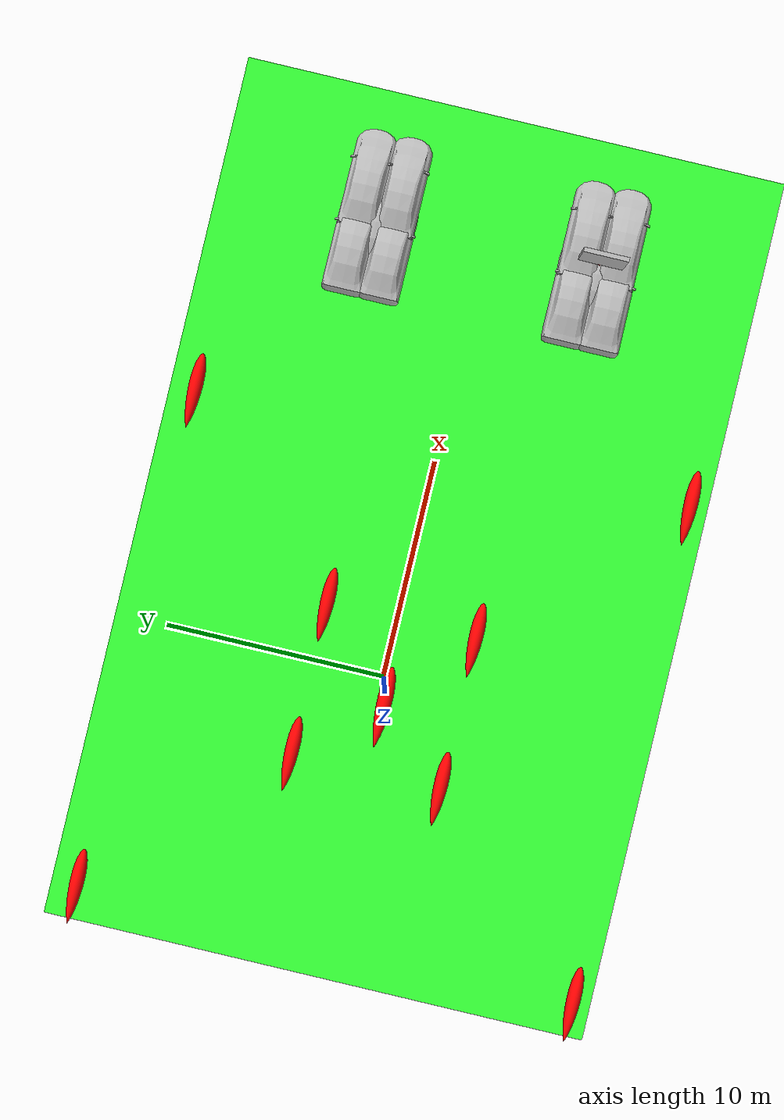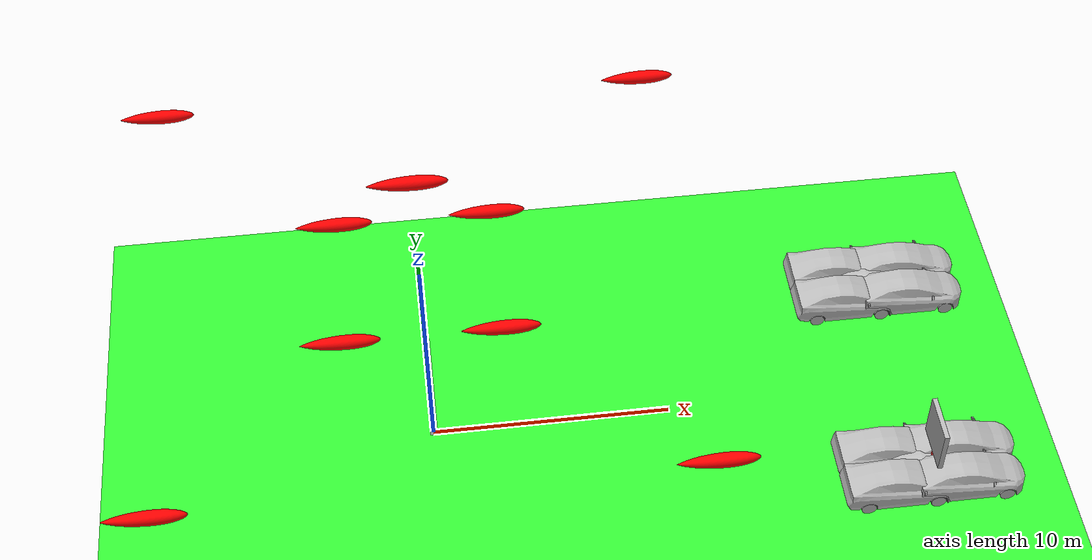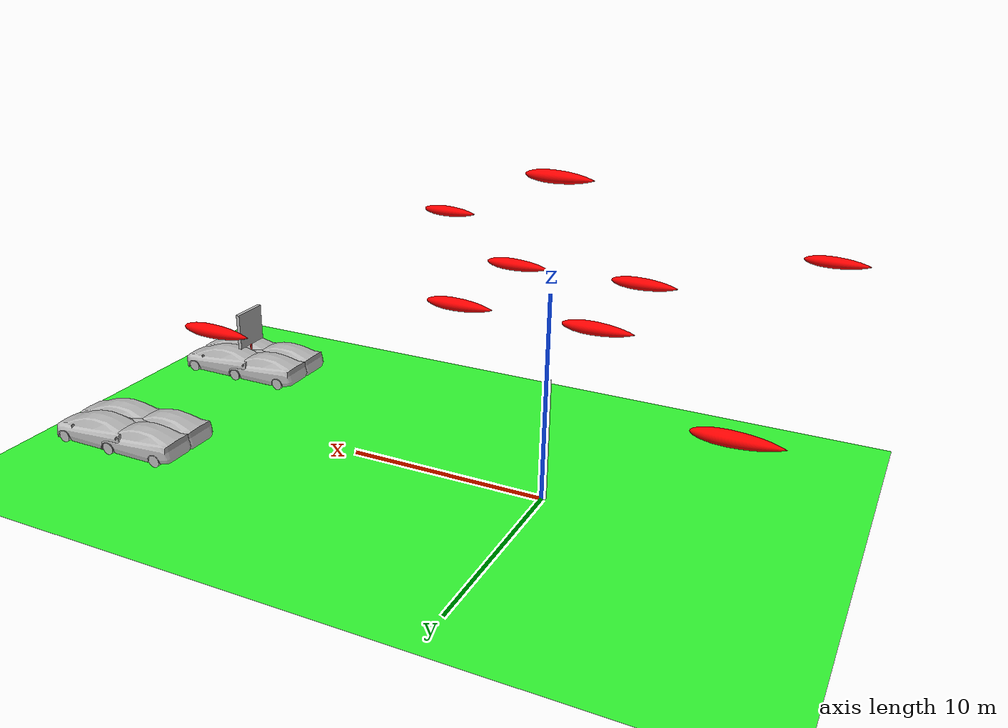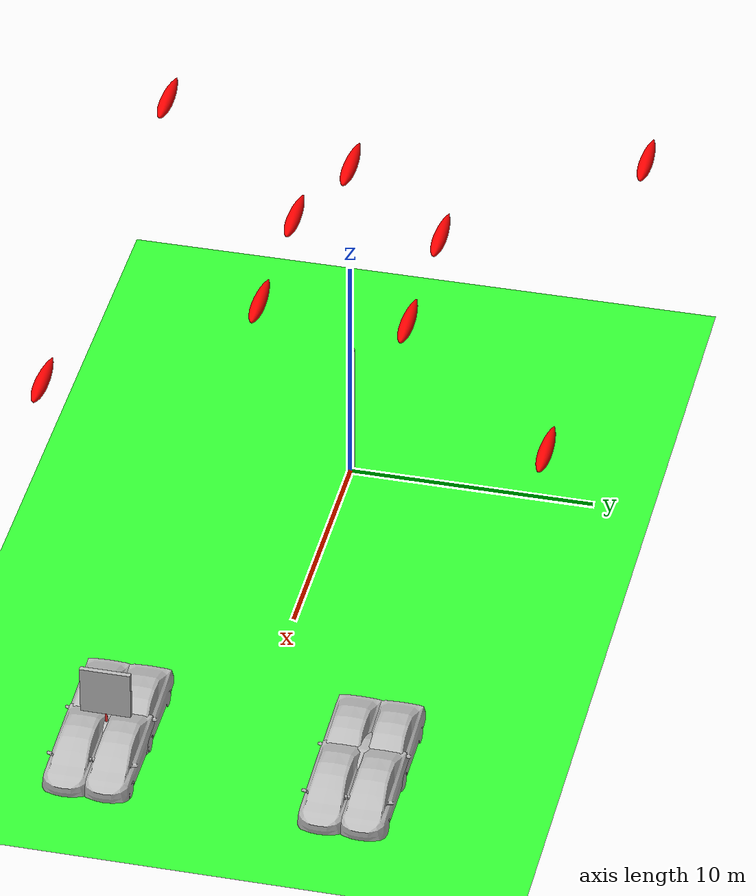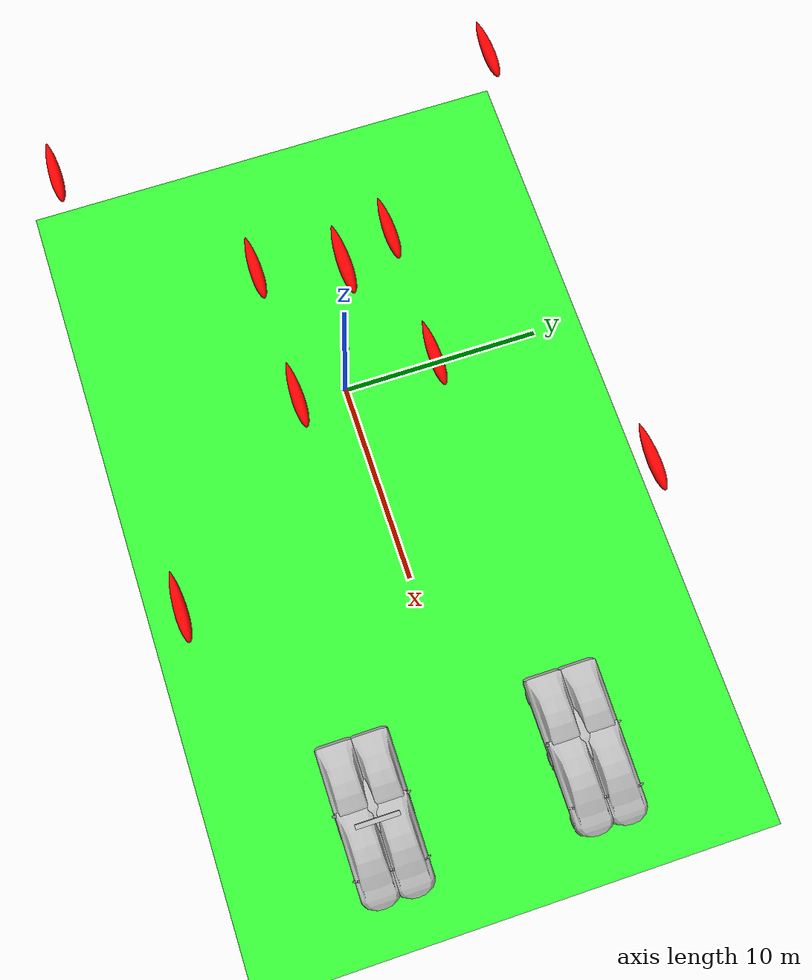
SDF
<?xml version="1.0" encoding="UTF-8"?>
<sdf version="1.9">
  <world name="vision_radar_track">
    <physics type="ode">
      <max_step_size>0.001</max_step_size>
      <real_time_factor>1.0</real_time_factor>
      <real_time_update_rate>250</real_time_update_rate>
    </physics>
    <plugin name="gz::sim::systems::Physics" filename="gz-sim-physics-system"/>
    <plugin name="gz::sim::systems::UserCommands" filename="gz-sim-user-commands-system"/>
    <plugin name="gz::sim::systems::SceneBroadcaster" filename="gz-sim-scene-broadcaster-system"/>
    <plugin name="gz::sim::systems::Contact" filename="gz-sim-contact-system"/>
    <plugin name="gz::sim::systems::Imu" filename="gz-sim-imu-system"/>
    <plugin name="gz::sim::systems::AirPressure" filename="gz-sim-air-pressure-system"/>
    <plugin name="gz::sim::systems::AirSpeed" filename="gz-sim-air-speed-system"/>
    <plugin name="gz::sim::systems::ApplyLinkWrench" filename="gz-sim-apply-link-wrench-system"/>
    <plugin name="gz::sim::systems::NavSat" filename="gz-sim-navsat-system"/>
    <plugin name="gz::sim::systems::Sensors" filename="gz-sim-sensors-system">
      <render_engine>ogre2</render_engine>
    </plugin>
    <gui fullscreen="false">
      <!-- 3D scene -->
      <plugin filename="MinimalScene" name="3D View">
        <gz-gui>
          <title>3D View</title>
          <property type="bool" key="showTitleBar">false</property>
          <property type="string" key="state">docked</property>
        </gz-gui>
        <engine>ogre2</engine>
        <scene>scene</scene>
        <ambient_light>0.4 0.4 0.4</ambient_light>
        <background_color>0.8 0.8 0.8</background_color>
        <camera_pose>-6 0 6 0 0.5 0</camera_pose>
        <camera_clip>
          <near>0.25</near>
          <far>25000</far>
        </camera_clip>
      </plugin>
      <!-- Plugins that add functionality to the scene -->
      <plugin filename="EntityContextMenuPlugin" name="Entity context menu">
        <gz-gui>
          <property key="state" type="string">floating</property>
          <property key="width" type="double">5</property>
          <property key="height" type="double">5</property>
          <property key="showTitleBar" type="bool">false</property>
        </gz-gui>
      </plugin>
      <plugin filename="GzSceneManager" name="Scene Manager">
        <gz-gui>
          <property key="resizable" type="bool">false</property>
          <property key="width" type="double">5</property>
          <property key="height" type="double">5</property>
          <property key="state" type="string">floating</property>
          <property key="showTitleBar" type="bool">false</property>
        </gz-gui>
      </plugin>
      <plugin filename="InteractiveViewControl" name="Interactive view control">
        <gz-gui>
          <property key="resizable" type="bool">false</property>
          <property key="width" type="double">5</property>
          <property key="height" type="double">5</property>
          <property key="state" type="string">floating</property>
          <property key="showTitleBar" type="bool">false</property>
        </gz-gui>
      </plugin>
      <plugin filename="CameraTracking" name="Camera Tracking">
        <gz-gui>
          <property key="resizable" type="bool">false</property>
          <property key="width" type="double">5</property>
          <property key="height" type="double">5</property>
          <property key="state" type="string">floating</property>
          <property key="showTitleBar" type="bool">false</property>
        </gz-gui>
      </plugin>
      <plugin filename="MarkerManager" name="Marker manager">
        <gz-gui>
          <property key="resizable" type="bool">false</property>
          <property key="width" type="double">5</property>
          <property key="height" type="double">5</property>
          <property key="state" type="string">floating</property>
          <property key="showTitleBar" type="bool">false</property>
        </gz-gui>
      </plugin>
      <plugin filename="SelectEntities" name="Select Entities">
        <gz-gui>
          <anchors target="Select entities">
            <line own="right" target="right"/>
            <line own="top" target="top"/>
          </anchors>
          <property key="resizable" type="bool">false</property>
          <property key="width" type="double">5</property>
          <property key="height" type="double">5</property>
          <property key="state" type="string">floating</property>
          <property key="showTitleBar" type="bool">false</property>
        </gz-gui>
      </plugin>
      <plugin filename="VisualizationCapabilities" name="Visualization Capabilities">
        <gz-gui>
          <property key="resizable" type="bool">false</property>
          <property key="width" type="double">5</property>
          <property key="height" type="double">5</property>
          <property key="state" type="string">floating</property>
          <property key="showTitleBar" type="bool">false</property>
        </gz-gui>
      </plugin>
      <plugin filename="Spawn" name="Spawn Entities">
        <gz-gui>
          <anchors target="Select entities">
            <line own="right" target="right"/>
            <line own="top" target="top"/>
          </anchors>
          <property key="resizable" type="bool">false</property>
          <property key="width" type="double">5</property>
          <property key="height" type="double">5</property>
          <property key="state" type="string">floating</property>
          <property key="showTitleBar" type="bool">false</property>
        </gz-gui>
      </plugin>
      <plugin name="World control" filename="WorldControl">
        <gz-gui>
          <title>World control</title>
          <property type="bool" key="showTitleBar">0</property>
          <property type="bool" key="resizable">0</property>
          <property type="double" key="height">72</property>
          <property type="double" key="width">121</property>
          <property type="double" key="z">1</property>
          <property type="string" key="state">floating</property>
          <anchors target="3D View">
            <line own="left" target="left"/>
            <line own="bottom" target="bottom"/>
          </anchors>
        </gz-gui>
        <play_pause>1</play_pause>
        <step>1</step>
        <start_paused>1</start_paused>
      </plugin>
      <plugin name="World stats" filename="WorldStats">
        <gz-gui>
          <title>World stats</title>
          <property type="bool" key="showTitleBar">0</property>
          <property type="bool" key="resizable">0</property>
          <property type="double" key="height">110</property>
          <property type="double" key="width">290</property>
          <property type="double" key="z">1</property>
          <property type="string" key="state">floating</property>
          <anchors target="3D View">
            <line own="right" target="right"/>
            <line own="bottom" target="bottom"/>
          </anchors>
        </gz-gui>
        <sim_time>1</sim_time>
        <real_time>1</real_time>
        <real_time_factor>1</real_time_factor>
        <iterations>1</iterations>
      </plugin>
      <plugin name="Entity tree" filename="EntityTree"/>
    </gui>
    <gravity>0 0 -9.8</gravity>
    <magnetic_field>6e-06 2.3e-05 -4.2e-05</magnetic_field>
    <atmosphere type="adiabatic"/>
    <scene>
      <grid>false</grid>
      <ambient>0.4 0.4 0.4 1</ambient>
      <background>0.7 0.7 0.7 1</background>
      <shadows>true</shadows>
    </scene>
    <model name="ground_plane">
      <static>true</static>
      <link name="link">
        <collision name="collision">
          <geometry>
            <plane>
              <normal>0 0 1</normal>
              <size>100000 100000</size>
            </plane>
          </geometry>
          <surface>
            <friction>
              <ode/>
            </friction>
            <bounce/>
            <contact/>
          </surface>
        </collision>
        <visual name="visual">
          <geometry>
            <plane>
              <normal>0 0 1</normal>
              <size>100000 100000</size>
            </plane>
          </geometry>
          <material>
            <ambient>0.2 1 0.2 1</ambient>
            <diffuse>0.2 1 0.2 1</diffuse>
            <specular>0.1 0.1 0.1 1</specular>
          </material>
        </visual>
        <pose>0 0 0 0 -0 0</pose>
        <inertial>
          <pose>0 0 0 0 -0 0</pose>
          <mass>1</mass>
          <inertia>
            <ixx>1</ixx>
            <ixy>0</ixy>
            <ixz>0</ixz>
            <iyy>1</iyy>
            <iyz>0</iyz>
            <izz>1</izz>
          </inertia>
        </inertial>
        <enable_wind>false</enable_wind>
      </link>
      <pose>0 0 0 0 -0 0</pose>
      <self_collide>false</self_collide>
    </model>
    <light name="sunUTC" type="directional">
      <pose>0 0 500 0 -0 0</pose>
      <cast_shadows>true</cast_shadows>
      <intensity>1</intensity>
      <direction>0.001 0.625 -0.78</direction>
      <diffuse>0.904 0.904 0.904 1</diffuse>
      <specular>0.271 0.271 0.271 1</specular>
      <attenuation>
        <range>2000</range>
        <linear>0</linear>
        <constant>1</constant>
        <quadratic>0</quadratic>
      </attenuation>
      <spot>
        <inner_angle>0</inner_angle>
        <outer_angle>0</outer_angle>
        <falloff>0</falloff>
      </spot>
    </light>
    <spherical_coordinates>
      <surface_model>EARTH_WGS84</surface_model>
      <world_frame_orientation>ENU</world_frame_orientation>
      <latitude_deg>47.397971057728974</latitude_deg>
      <longitude_deg> 8.546163739800146</longitude_deg>
      <elevation>0</elevation>
    </spherical_coordinates>
    <model name="prius_hybridx_apriltag">
	    <pose>20 -5 0.35 0 0 1.57</pose>
      <include merge="true">
        <uri>model://prius_hybridx_apriltag</uri>
      </include>
      <plugin
        filename="gz-sim-ackermann-steering-system"
        name="gz::sim::systems::AckermannSteering">
        <left_joint>front_left_wheel_joint</left_joint>
        <left_joint>rear_left_wheel_joint</left_joint>
        <right_joint>front_right_wheel_joint</right_joint>
        <right_joint>rear_right_wheel_joint</right_joint>
        <left_steering_joint>front_left_wheel_steering_joint</left_steering_joint>
        <right_steering_joint>front_right_wheel_steering_joint</right_steering_joint>
        <kingpin_width>1.52</kingpin_width>
        <steering_limit>0.4</steering_limit>
        <wheel_base>2.86</wheel_base>
        <wheel_separation>1.52</wheel_separation>
        <wheel_radius>0.31265</wheel_radius>
        <min_velocity>-10.0</min_velocity>
        <max_velocity>10.0</max_velocity>
        <min_acceleration>-10</min_acceleration>
        <max_acceleration>10</max_acceleration>
        <topic>/cmd_vel</topic>
      </plugin>

    </model>

    <model name="prius_hybridx">
	    <pose>20 5 0.35 0 0 1.57</pose>
      <include merge="true">
        <uri>model://prius_hybridx</uri>
      </include>
      <plugin
        filename="gz-sim-ackermann-steering-system"
        name="gz::sim::systems::AckermannSteering">
        <left_joint>front_left_wheel_joint</left_joint>
        <left_joint>rear_left_wheel_joint</left_joint>
        <right_joint>front_right_wheel_joint</right_joint>
        <right_joint>rear_right_wheel_joint</right_joint>
        <left_steering_joint>front_left_wheel_steering_joint</left_steering_joint>
        <right_steering_joint>front_right_wheel_steering_joint</right_steering_joint>
        <kingpin_width>1.52</kingpin_width>
        <steering_limit>0.4</steering_limit>
        <wheel_base>2.86</wheel_base>
        <wheel_separation>1.52</wheel_separation>
        <wheel_radius>0.31265</wheel_radius>
        <min_velocity>-10.0</min_velocity>
        <max_velocity>10.0</max_velocity>
        <min_acceleration>-10</min_acceleration>
        <max_acceleration>10</max_acceleration>
        <topic>/cmd_vel</topic>
      </plugin>

    </model>

    <model name="ptz_on_bracket">
      <link name="bracket_link">
        <pose>0 0 3 0 0 0</pose>
        <visual name="bracket_visual">
          <geometry>
            <box>
              <size>0.3 0.3 6</size>
            </box>
          </geometry>
          <material>
            <ambient>1 1 1 1</ambient>
            <diffuse>1 1 1 1</diffuse>
            <specular>0.5 0.5 0.5 1</specular>
          </material>
        </visual>
        <collision name="base_collision">
          <geometry>
            <box>
              <size>0.5 0.5 6</size>
            </box>
          </geometry>
        </collision>
      </link>

      <joint name="bracket_fixed_joint" type="fixed">
        <parent>world</parent>
        <child>bracket_link</child>
      </joint>

      <include merge="true">
        <uri>model://ptz_cam</uri>
        <pose>0 0 6 0 0 0</pose>
      </include>

      <joint name="ptz_fixed_joint" type="fixed">
        <parent>bracket_link</parent>
        <child>ptz_base_link</child>
        <pose>0 0 3 0 0 0</pose>
      </joint>
    </model>

    <model name="airship_1">
	    <pose>10 10 0 0 0 0</pose>
      <static>true</static>
      <include merge="true">
        <uri>model://airship</uri>
      </include>
    </model>

    <model name="airship_2">
	    <pose>10 -10 0 0 0 0</pose>
      <static>true</static>
      <include merge="true">
        <uri>model://airship</uri>
      </include>
    </model>

    <model name="airship_3">
	    <pose>-10 -10 0 0 0 0</pose>
      <static>true</static>
      <include merge="true">
        <uri>model://airship</uri>
      </include>
    </model>

    <model name="airship_4">
	    <pose>-10 10 0 0 0 0</pose>
      <static>true</static>
      <include merge="true">
        <uri>model://airship</uri>
      </include>
    </model>

    <model name="airship_5">
	    <pose>3 3 0 0 0 0</pose>
      <static>true</static>
      <include merge="true">
        <uri>model://airship</uri>
      </include>
    </model>

    <model name="airship_6">
	    <pose>3 -3 0 0 0 0</pose>
      <static>true</static>
      <include merge="true">
        <uri>model://airship</uri>
      </include>
    </model>

    <model name="airship_7">
	    <pose>-3 -3 0 0 0 0</pose>
      <static>true</static>
      <include merge="true">
        <uri>model://airship</uri>
      </include>
    </model>

    <model name="airship_8">
	    <pose>-3 3 0 0 0 0</pose>
      <static>true</static>
      <include merge="true">
        <uri>model://airship</uri>
      </include>
    </model>

    <model name="airship_9">
	    <pose>-0 0 5 0 0 0</pose>
      <static>true</static>
      <include merge="true">
        <uri>model://airship</uri>
      </include>
    </model>

  </world>
</sdf>

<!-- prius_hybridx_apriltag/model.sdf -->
<sdf version="1.8">
  <model name="prius_hybridx_apriltag">
    <pose>0 0 0.03 0 0 0</pose>

    <link name="chassis">
      <inertial>
        <mass>1326.0</mass>
        <pose>0 -0.266 0.48 0 0 0</pose>
        <inertia>
          <ixx>2581.13354740</ixx>
          <ixy>0.0</ixy>
          <iyy>591.30846112</iyy>
          <ixz>0.0</ixz>
          <iyz>0.0</iyz>
          <izz>2681.95008628</izz>
        </inertia>
      </inertial>

      <visual name="chassis_visual">
        <geometry>
          <mesh>
            <uri>model://prius_hybrid/meshes/Hybrid.obj</uri>
            <scale>0.01 0.01 0.01</scale>
            <submesh>
              <name>Hybrid</name>
              <center>false</center>
            </submesh>
          </mesh>
        </geometry>
      </visual>

      <visual name="interior_visual">
        <geometry>
          <mesh>
            <uri>model://prius_hybrid/meshes/Hybrid.obj</uri>
            <scale>0.01 0.01 0.01</scale>
            <submesh>
              <name>Hybrid_Interior</name>
              <center>false</center>
            </submesh>
          </mesh>
        </geometry>
      </visual>

      <visual name="windows_visual">
        <geometry>
          <mesh>
            <uri>model://prius_hybrid/meshes/Hybrid.obj</uri>
            <scale>0.01 0.01 0.01</scale>
            <submesh>
              <name>Hybrid_Windows</name>
              <center>false</center>
            </submesh>
          </mesh>
        </geometry>
      </visual>

      <collision name="chassis">
        <pose>0.0 0.05 0.625 0 0 0</pose>
        <geometry>
          <box>
            <size>1.7526 2.1 0.95</size>
          </box>
        </geometry>
      </collision>

      <collision name="front_bumper">
        <pose>0.0 -2.0 0.458488 0.0 0 0</pose>
        <geometry>
          <box>
            <size>1.337282 0.48 0.566691</size>
          </box>
        </geometry>
      </collision>

      <collision name="hood">
        <pose>0.0 -1.900842 0.676305 0.341247 0 0</pose>
        <geometry>
          <box>
            <size>1.597968 0.493107 0.265468</size>
          </box>
        </geometry>
      </collision>

      <collision name="windshield">
        <pose>0.0 -0.875105 1.032268 0.335476 0 0</pose>
        <geometry>
          <box>
            <size>1.168381 1.654253 0.272347</size>
          </box>
        </geometry>
      </collision>

      <collision name="top_front">
        <pose>0.0 0.161236 1.386042 0.135030 0 0</pose>
        <geometry>
          <box>
            <size>1.279154 0.625988 0.171868</size>
          </box>
        </geometry>
      </collision>

      <collision name="top_rear">
        <pose>0.0 0.817696 1.360069 -0.068997 0 0</pose>
        <geometry>
          <box>
            <size>1.285130 0.771189 0.226557</size>
          </box>
        </geometry>
      </collision>

      <collision name="rear_window">
        <pose>0.0 1.640531 1.175126 -0.262017 0 0</pose>
        <geometry>
          <box>
            <size>1.267845 1.116344 0.244286</size>
          </box>
        </geometry>
      </collision>

      <collision name="trunk">
        <pose>0.0 1.637059 0.888180 0.0 0 0</pose>
        <geometry>
          <box>
            <size>1.788064 1.138988 0.482746</size>
          </box>
        </geometry>
      </collision>

      <collision name="back_bumper">
        <pose>0.0 2.054454 0.577870 0.0 0 0</pose>
        <geometry>
          <box>
            <size>1.781650 0.512093 0.581427</size>
          </box>
        </geometry>
      </collision>

      <sensor name="imu_sensor" type="imu">
        <always_on>1</always_on>
        <update_rate>250</update_rate>
        <imu>
          <angular_velocity>
            <x>
              <noise type="gaussian">
                <mean>0</mean>
                <stddev>0.00018665</stddev>
                <dynamic_bias_stddev>3.8785e-05</dynamic_bias_stddev>
                <dynamic_bias_correlation_time>1000</dynamic_bias_correlation_time>
              </noise>
            </x>
            <y>
              <noise type="gaussian">
                <mean>0</mean>
                <stddev>0.00018665</stddev>
                <dynamic_bias_stddev>3.8785e-05</dynamic_bias_stddev>
                <dynamic_bias_correlation_time>1000</dynamic_bias_correlation_time>
              </noise>
            </y>
            <z>
              <noise type="gaussian">
                <mean>0</mean>
                <stddev>0.00018665</stddev>
                <dynamic_bias_stddev>3.8785e-05</dynamic_bias_stddev>
                <dynamic_bias_correlation_time>1000</dynamic_bias_correlation_time>
              </noise>
            </z>
          </angular_velocity>
          <linear_acceleration>
            <x>
              <noise type="gaussian">
                <mean>0</mean>
                <stddev>0.00186</stddev>
                <dynamic_bias_stddev>0.006</dynamic_bias_stddev>
                <dynamic_bias_correlation_time>300</dynamic_bias_correlation_time>
              </noise>
            </x>
            <y>
              <noise type="gaussian">
                <mean>0</mean>
                <stddev>0.00186</stddev>
                <dynamic_bias_stddev>0.006</dynamic_bias_stddev>
                <dynamic_bias_correlation_time>300</dynamic_bias_correlation_time>
              </noise>
            </y>
            <z>
              <noise type="gaussian">
                <mean>0</mean>
                <stddev>0.00186</stddev>
                <dynamic_bias_stddev>0.006</dynamic_bias_stddev>
                <dynamic_bias_correlation_time>300</dynamic_bias_correlation_time>
              </noise>
            </z>
          </linear_acceleration>
        </imu>
      </sensor>

      <sensor name="navsat_sensor" type="navsat">
        <always_on>1</always_on>
        <update_rate>30</update_rate>
      </sensor>
    </link>

    <link name="front_left_wheel">
      <pose>0.76 -1.41 0.3 0 0 0</pose>
      <inertial>
        <mass>11</mass>
        <inertia>
          <ixx>0.58631238</ixx>
          <ixy>0.0</ixy>
          <iyy>0.33552910</iyy>
          <ixz>0.0</ixz>
          <iyz>0.0</iyz>
          <izz>0.33552910</izz>
        </inertia>
      </inertial>

      <visual name="visual">
        <pose>0.04 0.0 0.0 0 0 0</pose>
        <geometry>
          <mesh>
            <uri>model://prius_hybrid/meshes/Hybrid.obj</uri>
            <scale>0.01 0.01 0.01</scale>
            <submesh>
              <name>Wheel_Front_Left_</name>
              <center>true</center>
            </submesh>
          </mesh>
        </geometry>
      </visual>

      <collision name="collision">
        <pose>0.0 0.0 0.0 0 1.5707963267948966 0</pose>
        <geometry>
          <sphere>
            <radius>0.31265</radius>
          </sphere>
        </geometry>
        <surface>
          <friction>
            <ode>
              <mu>0.9</mu>
              <mu2>0.9</mu2>
              <slip1>0.0</slip1>
              <slip2>0.0</slip2>
            </ode>
          </friction>
          <contact>
            <ode>
              <min_depth>0.001</min_depth>
              <kp>1e9</kp>
            </ode>
          </contact>
        </surface>

      </collision>
    </link>

    <!-- 在车顶添加 apriltag_sign 模型 -->
    <include>
      <uri>model://apriltag_sign</uri>  <!-- 使用 Gazebo 自带的 apriltag_sign 模型 -->
      <pose>0 0 1.4 0 0 -1.57</pose>   <!-- 将模型置于车顶-->
      <name>apriltag_sign</name>        <!-- 模型的名称 -->
    </include>

     <!-- 刚性关节：将 apriltag 模型连接到圆柱体顶部 -->
    <joint name="sign_joint" type="fixed">
      <parent>chassis</parent>  <!-- 父 Link：圆柱体 -->
      <child>apriltag_sign::sign</child>  <!-- 子 Link：apriltag 的默认 Link -->
      <pose>0 0 1.4 0 0 -1.57</pose>  <!-- 关节位置和姿态 -->
    </joint>

    <link name="front_left_wheel_steering">
      <pose relative_to="front_left_wheel_joint">0 0 0 0 0 0</pose>
      <inertial>
        <mass>1.0</mass>
        <inertia>
          <ixx>0.14583300</ixx>
          <ixy>0</ixy>
          <ixz>0</ixz>
          <iyy>0.14583300</iyy>
          <iyz>0</iyz>
          <izz>0.12500000</izz>
        </inertia>
      </inertial>
    </link>

    <joint name="front_left_wheel_joint" type="revolute" >
      <pose relative_to="front_left_wheel">0 0 0 0 0 0</pose>
      <child>front_left_wheel</child>
      <parent>front_left_wheel_steering</parent>
      <axis>
        <xyz>1 0 0</xyz>
        <limit>
          <lower>-1.79769e+308</lower>
          <upper>1.79769e+308</upper>
        </limit>
        <dynamics>
          <spring_reference>0</spring_reference>
          <spring_stiffness>0</spring_stiffness>
        </dynamics>
      </axis>
    </joint>

    <joint name="front_left_wheel_steering_joint" type="revolute">
      <pose relative_to="front_left_wheel_steering">0 0 0 0 0 0</pose>
      <parent>chassis</parent>
      <child>front_left_wheel_steering</child>
      <axis>
        <xyz>0 0 1</xyz>
        <limit>
          <lower>-0.6</lower>
          <upper>0.6</upper>
          <velocity>1.0</velocity>
          <effort>25</effort>
        </limit>
      </axis>
    </joint>

    <link name="front_right_wheel">
      <pose>-0.76 -1.41 0.3 0 0 0</pose>
      <inertial>
        <mass>11</mass>
        <inertia>
          <ixx>0.58631238</ixx>
          <ixy>0.0</ixy>
          <iyy>0.33552910</iyy>
          <ixz>0.0</ixz>
          <iyz>0.0</iyz>
          <izz>0.33552910</izz>
        </inertia>
      </inertial>
      <visual name="visual">
        <pose>-0.04 0.0 0.0 0 0 0</pose>
        <pose>0 0 0.0 0 0 0</pose>
        <geometry>
          <mesh>
            <uri>model://prius_hybrid/meshes/Hybrid.obj</uri>
            <scale>0.01 0.01 0.01</scale>
            <submesh>
              <name>Wheel_Front_Right</name>
              <center>true</center>
            </submesh>
          </mesh>
        </geometry>
      </visual>

      <collision name="collision">
        <pose>0.0 0.0 0.0 0 1.5707963267948966 0</pose>
        <geometry>
          <sphere>
            <radius>0.31265</radius>
          </sphere>
        </geometry>
        <surface>
          <friction>
            <ode>
              <mu>0.9</mu>
              <mu2>0.9</mu2>
              <slip1>0.0</slip1>
              <slip2>0.0</slip2>
            </ode>
          </friction>
          <contact>
            <ode>
              <min_depth>0.001</min_depth>
              <kp>1e9</kp>
            </ode>
          </contact>
        </surface>

      </collision>
    </link>

    <link name="front_right_wheel_steering">
      <pose relative_to="front_right_wheel_joint">0 0 0 0 0 0</pose>
      <inertial>
        <mass>1.0</mass>
        <inertia>
          <ixx>0.14583300</ixx>
          <ixy>0</ixy>
          <ixz>0</ixz>
          <iyy>0.14583300</iyy>
          <iyz>0</iyz>
          <izz>0.12500000</izz>
        </inertia>
      </inertial>
    </link>

    <joint name="front_right_wheel_joint" type="revolute" >
      <pose relative_to="front_right_wheel">0 0 0 0 0 0</pose>
      <child>front_right_wheel</child>
      <parent>front_right_wheel_steering</parent>
      <axis>
        <xyz>1 0 0</xyz>
        <limit>
          <lower>-1.79769e+308</lower>
          <upper>1.79769e+308</upper>
        </limit>
        <dynamics>
          <spring_reference>0</spring_reference>
          <spring_stiffness>0</spring_stiffness>
        </dynamics>
      </axis>
    </joint>

    <joint name="front_right_wheel_steering_joint" type="revolute">
      <pose relative_to="front_right_wheel_steering">0 0 0 0 0 0</pose>
      <parent>chassis</parent>
      <child>front_right_wheel_steering</child>
      <axis>
        <xyz>0 0 1</xyz>
        <limit>
          <lower>-0.6</lower>
          <upper>0.6</upper>
          <velocity>1.0</velocity>
          <effort>25</effort>
        </limit>
      </axis>
    </joint>

    <link name="rear_left_wheel">
      <pose>0.786 1.45 0.3 0 0 0</pose>
      <inertial>
        <mass>11</mass>
        <inertia>
          <ixx>0.58631238</ixx>
          <ixy>0.0</ixy>
          <iyy>0.33552910</iyy>
          <ixz>0.0</ixz>
          <iyz>0.0</iyz>
          <izz>0.33552910</izz>
        </inertia>
      </inertial>

      <visual name="visual">
        <pose>0.04 0.0 0.0 0 0 0</pose>
        <geometry>
          <mesh>
            <uri>model://prius_hybrid/meshes/Hybrid.obj</uri>
            <scale>0.01 0.01 0.01</scale>
            <submesh>
              <name>Wheel_Front_Left_</name>
              <center>true</center>
            </submesh>
          </mesh>
        </geometry>
      </visual>

      <collision name="collision">
        <pose>0.0 0.0 0.0 0 1.5707963267948966 0</pose>
        <geometry>
          <sphere>
            <radius>0.31265</radius>
          </sphere>
        </geometry>
        <surface>
          <friction>
            <ode>
              <mu>1.1</mu>
              <mu2>1.1</mu2>
              <slip1>0.0</slip1>
              <slip2>0.0</slip2>
            </ode>
          </friction>
          <contact>
            <ode>
              <min_depth>0.001</min_depth>
              <kp>1e9</kp>
            </ode>
          </contact>
        </surface>

      </collision>
    </link>

    <joint name="rear_left_wheel_joint" type="revolute">
      <parent>chassis</parent>
      <child>rear_left_wheel</child>
      <pose relative_to="rear_left_wheel">0 0 0 0 0 0</pose>
      <axis>
        <xyz>1 0 0</xyz>
        <limit>
          <lower>-1.79769e+308</lower>
          <upper>1.79769e+308</upper>
        </limit>
        <dynamics>
          <spring_reference>0</spring_reference>
          <spring_stiffness>0</spring_stiffness>
        </dynamics>
      </axis>
    </joint>

    <link name="rear_right_wheel">
      <pose>-0.786 1.45 0.3 0 0 0</pose>
      <inertial>
        <mass>11</mass>
        <inertia>
          <ixx>0.58631238</ixx>
          <ixy>0.0</ixy>
          <iyy>0.33552910</iyy>
          <ixz>0.0</ixz>
          <iyz>0.0</iyz>
          <izz>0.33552910</izz>
        </inertia>
      </inertial>
      <visual name="visual">
        <pose>-0.04 0.0 0.0 0 0 0</pose>
        <geometry>
          <mesh>
            <uri>model://prius_hybrid/meshes/Hybrid.obj</uri>
            <scale>0.01 0.01 0.01</scale>
            <submesh>
              <name>Wheel_Front_Right</name>
              <center>true</center>
            </submesh>
          </mesh>
        </geometry>
      </visual>

      <collision name="collision">
        <pose>0.0 0.0 0.0 0 1.5707963267948966 0</pose>
        <geometry>
          <sphere>
            <radius>0.31265</radius>
          </sphere>
        </geometry>
        <surface>
          <friction>
            <ode>
              <mu>1.1</mu>
              <mu2>1.1</mu2>
              <slip1>0.0</slip1>
              <slip2>0.0</slip2>
            </ode>
          </friction>
          <contact>
            <ode>
              <min_depth>0.001</min_depth>
              <kp>1e9</kp>
            </ode>
          </contact>
        </surface>
      </collision>
    </link>

    <joint name="rear_right_wheel_joint" type="revolute">
      <parent>chassis</parent>
      <child>rear_right_wheel</child>
      <pose relative_to="rear_right_wheel">0 0 0 0 0 0</pose>
      <axis>
        <xyz>1 0 0</xyz>
        <limit>
          <lower>-1.79769e+308</lower>
          <upper>1.79769e+308</upper>
        </limit>
        <dynamics>
          <spring_reference>0</spring_reference>
          <spring_stiffness>0</spring_stiffness>
        </dynamics>
      </axis>
    </joint>

  </model>

</sdf>

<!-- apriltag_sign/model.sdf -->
<sdf version='1.6'>
  <model name='apriltag_sign'>
    <link name='sign'>
      <pose frame=''>0 0 0.25 0 0 0</pose>
      <visual name="visual">
        <geometry>
          <cylinder>
            <radius>0.05</radius>  <!-- 半径 = 直径 / 2 = 0.1 / 2 = 0.05 -->
            <length>0.5</length>   <!-- 高度 -->
          </cylinder>
        </geometry>
        <!-- 定义颜色为银色 -->
        <material>
          <ambient>1 0.2 0.2 1</ambient>  <!-- 环境光颜色 -->
          <diffuse>1 0.2 0.2 1</diffuse>  <!-- 漫反射颜色 -->
          <specular>0.5 0.5 0.5 1</specular> <!-- 镜面反射颜色 -->
        </material>
      </visual>
     </link>
      <!-- 在圆柱体顶部添加apriltag模型 -->
     <include>
      <uri>model://apriltag</uri>  <!-- 使用 Gazebo 自带的单位模型 -->
      <pose>0 0 1.5 -1.57 0 1.57</pose>   <!-- 将apriltag放置在圆柱体顶部 -->
      <name>apritag</name>        <!-- 模型的名称 -->
    </include>

    <!-- 刚性关节：将 apriltag 模型连接到圆柱体顶部 -->
    <joint name="fixed_joint" type="fixed">
      <parent>sign</parent>  <!-- 父 Link：圆柱体 -->
      <child>apritag::main</child>  <!-- 子 Link：apriltag 的默认 Link -->
      <pose>0 0 1.5 -1.57 0 1.57</pose>  <!-- 关节位置和姿态 -->
    </joint>
    <static>1</static>
  </model>
</sdf>

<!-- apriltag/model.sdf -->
<sdf version='1.6'>
  <model name='apriltag'>
    <link name='main'>
      <pose frame=''>0 0 0 0 0 0</pose>
      <visual name="visual">
        <geometry>
            <mesh>
                <scale>1 1 1</scale>
                <uri>model://apriltag/meshes/AprilTags0.dae</uri>
            </mesh>
        </geometry>
      </visual>
     </link>
    <static>1</static>
  </model>
</sdf>

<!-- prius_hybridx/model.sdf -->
<sdf version="1.8">
  <model name="prius_hybridx">
    <pose>0 0 0.03 0 0 0</pose>

    <link name="chassis">
      <inertial>
        <mass>1326.0</mass>
        <pose>0 -0.266 0.48 0 0 0</pose>
        <inertia>
          <ixx>2581.13354740</ixx>
          <ixy>0.0</ixy>
          <iyy>591.30846112</iyy>
          <ixz>0.0</ixz>
          <iyz>0.0</iyz>
          <izz>2681.95008628</izz>
        </inertia>
      </inertial>

      <visual name="chassis_visual">
        <geometry>
          <mesh>
            <uri>model://prius_hybrid/meshes/Hybrid.obj</uri>
            <scale>0.01 0.01 0.01</scale>
            <submesh>
              <name>Hybrid</name>
              <center>false</center>
            </submesh>
          </mesh>
        </geometry>
      </visual>

      <visual name="interior_visual">
        <geometry>
          <mesh>
            <uri>model://prius_hybrid/meshes/Hybrid.obj</uri>
            <scale>0.01 0.01 0.01</scale>
            <submesh>
              <name>Hybrid_Interior</name>
              <center>false</center>
            </submesh>
          </mesh>
        </geometry>
      </visual>

      <visual name="windows_visual">
        <geometry>
          <mesh>
            <uri>model://prius_hybrid/meshes/Hybrid.obj</uri>
            <scale>0.01 0.01 0.01</scale>
            <submesh>
              <name>Hybrid_Windows</name>
              <center>false</center>
            </submesh>
          </mesh>
        </geometry>
      </visual>

      <collision name="chassis">
        <pose>0.0 0.05 0.625 0 0 0</pose>
        <geometry>
          <box>
            <size>1.7526 2.1 0.95</size>
          </box>
        </geometry>
      </collision>

      <collision name="front_bumper">
        <pose>0.0 -2.0 0.458488 0.0 0 0</pose>
        <geometry>
          <box>
            <size>1.337282 0.48 0.566691</size>
          </box>
        </geometry>
      </collision>

      <collision name="hood">
        <pose>0.0 -1.900842 0.676305 0.341247 0 0</pose>
        <geometry>
          <box>
            <size>1.597968 0.493107 0.265468</size>
          </box>
        </geometry>
      </collision>

      <collision name="windshield">
        <pose>0.0 -0.875105 1.032268 0.335476 0 0</pose>
        <geometry>
          <box>
            <size>1.168381 1.654253 0.272347</size>
          </box>
        </geometry>
      </collision>

      <collision name="top_front">
        <pose>0.0 0.161236 1.386042 0.135030 0 0</pose>
        <geometry>
          <box>
            <size>1.279154 0.625988 0.171868</size>
          </box>
        </geometry>
      </collision>

      <collision name="top_rear">
        <pose>0.0 0.817696 1.360069 -0.068997 0 0</pose>
        <geometry>
          <box>
            <size>1.285130 0.771189 0.226557</size>
          </box>
        </geometry>
      </collision>

      <collision name="rear_window">
        <pose>0.0 1.640531 1.175126 -0.262017 0 0</pose>
        <geometry>
          <box>
            <size>1.267845 1.116344 0.244286</size>
          </box>
        </geometry>
      </collision>

      <collision name="trunk">
        <pose>0.0 1.637059 0.888180 0.0 0 0</pose>
        <geometry>
          <box>
            <size>1.788064 1.138988 0.482746</size>
          </box>
        </geometry>
      </collision>

      <collision name="back_bumper">
        <pose>0.0 2.054454 0.577870 0.0 0 0</pose>
        <geometry>
          <box>
            <size>1.781650 0.512093 0.581427</size>
          </box>
        </geometry>
      </collision>
    </link>

    <link name="front_left_wheel">
      <pose>0.76 -1.41 0.3 0 0 0</pose>
      <inertial>
        <mass>11</mass>
        <inertia>
          <ixx>0.58631238</ixx>
          <ixy>0.0</ixy>
          <iyy>0.33552910</iyy>
          <ixz>0.0</ixz>
          <iyz>0.0</iyz>
          <izz>0.33552910</izz>
        </inertia>
      </inertial>

      <visual name="visual">
        <pose>0.04 0.0 0.0 0 0 0</pose>
        <geometry>
          <mesh>
            <uri>model://prius_hybrid/meshes/Hybrid.obj</uri>
            <scale>0.01 0.01 0.01</scale>
            <submesh>
              <name>Wheel_Front_Left_</name>
              <center>true</center>
            </submesh>
          </mesh>
        </geometry>
      </visual>

      <collision name="collision">
        <pose>0.0 0.0 0.0 0 1.5707963267948966 0</pose>
        <geometry>
          <sphere>
            <radius>0.31265</radius>
          </sphere>
        </geometry>
        <surface>
          <friction>
            <ode>
              <mu>0.9</mu>
              <mu2>0.9</mu2>
              <slip1>0.0</slip1>
              <slip2>0.0</slip2>
            </ode>
          </friction>
          <contact>
            <ode>
              <min_depth>0.001</min_depth>
              <kp>1e9</kp>
            </ode>
          </contact>
        </surface>
      </collision>

      <sensor name="imu_sensor" type="imu">
        <always_on>1</always_on>
        <update_rate>250</update_rate>
        <imu>
          <angular_velocity>
            <x>
              <noise type="gaussian">
                <mean>0</mean>
                <stddev>0.00018665</stddev>
                <dynamic_bias_stddev>3.8785e-05</dynamic_bias_stddev>
                <dynamic_bias_correlation_time>1000</dynamic_bias_correlation_time>
              </noise>
            </x>
            <y>
              <noise type="gaussian">
                <mean>0</mean>
                <stddev>0.00018665</stddev>
                <dynamic_bias_stddev>3.8785e-05</dynamic_bias_stddev>
                <dynamic_bias_correlation_time>1000</dynamic_bias_correlation_time>
              </noise>
            </y>
            <z>
              <noise type="gaussian">
                <mean>0</mean>
                <stddev>0.00018665</stddev>
                <dynamic_bias_stddev>3.8785e-05</dynamic_bias_stddev>
                <dynamic_bias_correlation_time>1000</dynamic_bias_correlation_time>
              </noise>
            </z>
          </angular_velocity>
          <linear_acceleration>
            <x>
              <noise type="gaussian">
                <mean>0</mean>
                <stddev>0.00186</stddev>
                <dynamic_bias_stddev>0.006</dynamic_bias_stddev>
                <dynamic_bias_correlation_time>300</dynamic_bias_correlation_time>
              </noise>
            </x>
            <y>
              <noise type="gaussian">
                <mean>0</mean>
                <stddev>0.00186</stddev>
                <dynamic_bias_stddev>0.006</dynamic_bias_stddev>
                <dynamic_bias_correlation_time>300</dynamic_bias_correlation_time>
              </noise>
            </y>
            <z>
              <noise type="gaussian">
                <mean>0</mean>
                <stddev>0.00186</stddev>
                <dynamic_bias_stddev>0.006</dynamic_bias_stddev>
                <dynamic_bias_correlation_time>300</dynamic_bias_correlation_time>
              </noise>
            </z>
          </linear_acceleration>
        </imu>
      </sensor>

      <sensor name="navsat_sensor" type="navsat">
        <always_on>1</always_on>
        <update_rate>30</update_rate>
      </sensor>
    </link>

    <link name="front_left_wheel_steering">
      <pose relative_to="front_left_wheel_joint">0 0 0 0 0 0</pose>
      <inertial>
        <mass>1.0</mass>
        <inertia>
          <ixx>0.14583300</ixx>
          <ixy>0</ixy>
          <ixz>0</ixz>
          <iyy>0.14583300</iyy>
          <iyz>0</iyz>
          <izz>0.12500000</izz>
        </inertia>
      </inertial>
    </link>

    <joint name="front_left_wheel_joint" type="revolute" >
      <pose relative_to="front_left_wheel">0 0 0 0 0 0</pose>
      <child>front_left_wheel</child>
      <parent>front_left_wheel_steering</parent>
      <axis>
        <xyz>1 0 0</xyz>
        <limit>
          <lower>-1.79769e+308</lower>
          <upper>1.79769e+308</upper>
        </limit>
        <dynamics>
          <spring_reference>0</spring_reference>
          <spring_stiffness>0</spring_stiffness>
        </dynamics>
      </axis>
    </joint>

    <joint name="front_left_wheel_steering_joint" type="revolute">
      <pose relative_to="front_left_wheel_steering">0 0 0 0 0 0</pose>
      <parent>chassis</parent>
      <child>front_left_wheel_steering</child>
      <axis>
        <xyz>0 0 1</xyz>
        <limit>
          <lower>-0.6</lower>
          <upper>0.6</upper>
          <velocity>1.0</velocity>
          <effort>25</effort>
        </limit>
      </axis>
    </joint>

    <link name="front_right_wheel">
      <pose>-0.76 -1.41 0.3 0 0 0</pose>
      <inertial>
        <mass>11</mass>
        <inertia>
          <ixx>0.58631238</ixx>
          <ixy>0.0</ixy>
          <iyy>0.33552910</iyy>
          <ixz>0.0</ixz>
          <iyz>0.0</iyz>
          <izz>0.33552910</izz>
        </inertia>
      </inertial>
      <visual name="visual">
        <pose>-0.04 0.0 0.0 0 0 0</pose>
        <pose>0 0 0.0 0 0 0</pose>
        <geometry>
          <mesh>
            <uri>model://prius_hybrid/meshes/Hybrid.obj</uri>
            <scale>0.01 0.01 0.01</scale>
            <submesh>
              <name>Wheel_Front_Right</name>
              <center>true</center>
            </submesh>
          </mesh>
        </geometry>
      </visual>

      <collision name="collision">
        <pose>0.0 0.0 0.0 0 1.5707963267948966 0</pose>
        <geometry>
          <sphere>
            <radius>0.31265</radius>
          </sphere>
        </geometry>
        <surface>
          <friction>
            <ode>
              <mu>0.9</mu>
              <mu2>0.9</mu2>
              <slip1>0.0</slip1>
              <slip2>0.0</slip2>
            </ode>
          </friction>
          <contact>
            <ode>
              <min_depth>0.001</min_depth>
              <kp>1e9</kp>
            </ode>
          </contact>
        </surface>

      </collision>
    </link>

    <link name="front_right_wheel_steering">
      <pose relative_to="front_right_wheel_joint">0 0 0 0 0 0</pose>
      <inertial>
        <mass>1.0</mass>
        <inertia>
          <ixx>0.14583300</ixx>
          <ixy>0</ixy>
          <ixz>0</ixz>
          <iyy>0.14583300</iyy>
          <iyz>0</iyz>
          <izz>0.12500000</izz>
        </inertia>
      </inertial>
    </link>

    <joint name="front_right_wheel_joint" type="revolute" >
      <pose relative_to="front_right_wheel">0 0 0 0 0 0</pose>
      <child>front_right_wheel</child>
      <parent>front_right_wheel_steering</parent>
      <axis>
        <xyz>1 0 0</xyz>
        <limit>
          <lower>-1.79769e+308</lower>
          <upper>1.79769e+308</upper>
        </limit>
        <dynamics>
          <spring_reference>0</spring_reference>
          <spring_stiffness>0</spring_stiffness>
        </dynamics>
      </axis>
    </joint>

    <joint name="front_right_wheel_steering_joint" type="revolute">
      <pose relative_to="front_right_wheel_steering">0 0 0 0 0 0</pose>
      <parent>chassis</parent>
      <child>front_right_wheel_steering</child>
      <axis>
        <xyz>0 0 1</xyz>
        <limit>
          <lower>-0.6</lower>
          <upper>0.6</upper>
          <velocity>1.0</velocity>
          <effort>25</effort>
        </limit>
      </axis>
    </joint>

    <link name="rear_left_wheel">
      <pose>0.786 1.45 0.3 0 0 0</pose>
      <inertial>
        <mass>11</mass>
        <inertia>
          <ixx>0.58631238</ixx>
          <ixy>0.0</ixy>
          <iyy>0.33552910</iyy>
          <ixz>0.0</ixz>
          <iyz>0.0</iyz>
          <izz>0.33552910</izz>
        </inertia>
      </inertial>

      <visual name="visual">
        <pose>0.04 0.0 0.0 0 0 0</pose>
        <geometry>
          <mesh>
            <uri>model://prius_hybrid/meshes/Hybrid.obj</uri>
            <scale>0.01 0.01 0.01</scale>
            <submesh>
              <name>Wheel_Front_Left_</name>
              <center>true</center>
            </submesh>
          </mesh>
        </geometry>
      </visual>

      <collision name="collision">
        <pose>0.0 0.0 0.0 0 1.5707963267948966 0</pose>
        <geometry>
          <sphere>
            <radius>0.31265</radius>
          </sphere>
        </geometry>
        <surface>
          <friction>
            <ode>
              <mu>1.1</mu>
              <mu2>1.1</mu2>
              <slip1>0.0</slip1>
              <slip2>0.0</slip2>
            </ode>
          </friction>
          <contact>
            <ode>
              <min_depth>0.001</min_depth>
              <kp>1e9</kp>
            </ode>
          </contact>
        </surface>

      </collision>
    </link>

    <joint name="rear_left_wheel_joint" type="revolute">
      <parent>chassis</parent>
      <child>rear_left_wheel</child>
      <pose relative_to="rear_left_wheel">0 0 0 0 0 0</pose>
      <axis>
        <xyz>1 0 0</xyz>
        <limit>
          <lower>-1.79769e+308</lower>
          <upper>1.79769e+308</upper>
        </limit>
        <dynamics>
          <spring_reference>0</spring_reference>
          <spring_stiffness>0</spring_stiffness>
        </dynamics>
      </axis>
    </joint>

    <link name="rear_right_wheel">
      <pose>-0.786 1.45 0.3 0 0 0</pose>
      <inertial>
        <mass>11</mass>
        <inertia>
          <ixx>0.58631238</ixx>
          <ixy>0.0</ixy>
          <iyy>0.33552910</iyy>
          <ixz>0.0</ixz>
          <iyz>0.0</iyz>
          <izz>0.33552910</izz>
        </inertia>
      </inertial>
      <visual name="visual">
        <pose>-0.04 0.0 0.0 0 0 0</pose>
        <geometry>
          <mesh>
            <uri>model://prius_hybrid/meshes/Hybrid.obj</uri>
            <scale>0.01 0.01 0.01</scale>
            <submesh>
              <name>Wheel_Front_Right</name>
              <center>true</center>
            </submesh>
          </mesh>
        </geometry>
      </visual>

      <collision name="collision">
        <pose>0.0 0.0 0.0 0 1.5707963267948966 0</pose>
        <geometry>
          <sphere>
            <radius>0.31265</radius>
          </sphere>
        </geometry>
        <surface>
          <friction>
            <ode>
              <mu>1.1</mu>
              <mu2>1.1</mu2>
              <slip1>0.0</slip1>
              <slip2>0.0</slip2>
            </ode>
          </friction>
          <contact>
            <ode>
              <min_depth>0.001</min_depth>
              <kp>1e9</kp>
            </ode>
          </contact>
        </surface>
      </collision>
    </link>

    <joint name="rear_right_wheel_joint" type="revolute">
      <parent>chassis</parent>
      <child>rear_right_wheel</child>
      <pose relative_to="rear_right_wheel">0 0 0 0 0 0</pose>
      <axis>
        <xyz>1 0 0</xyz>
        <limit>
          <lower>-1.79769e+308</lower>
          <upper>1.79769e+308</upper>
        </limit>
        <dynamics>
          <spring_reference>0</spring_reference>
          <spring_stiffness>0</spring_stiffness>
        </dynamics>
      </axis>
    </joint>

  </model>

</sdf>

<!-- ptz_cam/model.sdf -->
<sdf version="1.10">
  <model name="ptz_cam">
    <self_collide>false</self_collide>
    <static>false</static>

    <link name="ptz_base_link">
      <pose>0 0 0.05 0 0 0</pose>
      <inertial>
        <mass>1.0</mass>
        <inertia>
          <ixx>0.00563</ixx>
          <ixy>0</ixy>
          <ixz>0</ixz>
          <iyy>0.00563</iyy>
          <iyz>0</iyz>
          <izz>0.0096</izz>
        </inertia>
      </inertial>
      <visual name="base_visual">
        <geometry>
          <box>
            <size>0.24 0.24 0.1</size>
          </box>
        </geometry>
        <material>
          <ambient>1 1 1 1</ambient>
          <diffuse>1 1 1 1</diffuse>
          <specular>0.5 0.5 0.5 1</specular>
        </material>
      </visual>
      <collision name="base_collision">
        <geometry>
          <box>
            <size>0.24 0.24 0.1</size>
          </box>
        </geometry>
      </collision>
    </link>

    <link name="ptz_yaw_link">
      <pose>0 0 0.13 0 0 0</pose>
      <inertial>
        <mass>0.3</mass>
        <inertia>
          <ixx>0.00139</ixx>
          <ixy>0</ixy>
          <ixz>0</ixz>
          <iyy>0.00139</iyy>
          <iyz>0</iyz>
          <izz>0.0015</izz>
        </inertia>
      </inertial>
      <visual name="yaw_visual">
        <geometry>
          <cylinder>
            <radius>0.1</radius>
            <length>0.16</length>
          </cylinder>
        </geometry>
        <material>
          <ambient>1 0 0 1</ambient>
          <diffuse>1 0 0 1</diffuse>
          <specular>0.5 0.5 0.5 1</specular>
        </material>
      </visual>
      <collision name="yaw_collision">
        <geometry>
          <cylinder>
            <radius>0.1</radius>
            <length>0.16</length>
          </cylinder>
        </geometry>
      </collision>
    </link>

    <joint name="ptz_yaw_joint" type="revolute">
      <parent>ptz_base_link</parent>
      <child>ptz_yaw_link</child>
      <axis>
        <xyz>0 0 1</xyz>
        <limit>
          <lower>-1e16</lower>
          <upper>1e16</upper>
          <effort>50</effort>
          <velocity>-1</velocity>
        </limit>
        <dynamics>
          <damping>0.05</damping>
        </dynamics>
      </axis>
      <physics>
        <ode>
          <implicit_spring_damper>1</implicit_spring_damper>
          <limit>
            <cfm>0.1</cfm>
            <erp>0.2</erp>
          </limit>
        </ode>
      </physics>
    </joint>

    <link name="ptz_pitch_link">
      <pose>0 0 0.31 0 0 0</pose>
      <inertial>
        <mass>0.5</mass>
        <inertia>
          <ixx>0.00288</ixx>
          <ixy>0</ixy>
          <ixz>0</ixz>
          <iyy>0.00288</iyy>
          <iyz>0</iyz>
          <izz>0.00288</izz>
        </inertia>
      </inertial>
      <visual name="pitch_visual">
        <geometry>
          <sphere>
            <radius>0.12</radius>
          </sphere>
        </geometry>
        <material>
          <ambient>1 1 1 1</ambient>
          <diffuse>1 1 1 1</diffuse>
          <specular>0.5 0.5 0.5 1</specular>
        </material>
      </visual>
      <collision name="pitch_collision">
        <geometry>
          <sphere>
            <radius>0.12</radius>
          </sphere>
        </geometry>
      </collision>
    </link>

    <joint name="ptz_pitch_joint" type="revolute">
      <parent>ptz_yaw_link</parent>
      <child>ptz_pitch_link</child>
      <axis>
        <xyz>0 1 0</xyz>
        <limit>
          <lower>-1.5708</lower>
          <upper>0.436332</upper>
          <effort>50</effort>
          <velocity>1.0</velocity>
        </limit>
        <dynamics>
          <damping>0.1</damping>
        </dynamics>
      </axis>
      <physics>
        <ode>
          <implicit_spring_damper>1</implicit_spring_damper>
          <limit>
            <cfm>0.1</cfm>
            <erp>0.2</erp>
          </limit>
        </ode>
      </physics>
    </joint>

    <link name="ptz_camera_link">
      <pose>0.12 0 0.31 0 1.5708 0</pose>
      <inertial>
        <mass>0.01</mass>
        <inertia>
          <ixx>2.3333e-06</ixx>
          <ixy>0</ixy>
          <ixz>0</ixz>
          <iyy>2.3333e-06</iyy>
          <iyz>0</iyz>
          <izz>2.0e-06</izz>
        </inertia>
      </inertial>
      <visual name="camera_visual">
        <geometry>
          <cylinder>
            <radius>0.02</radius>
            <length>0.04</length>
          </cylinder>
        </geometry>
        <material>
          <ambient>0.2 0.2 0.2 1</ambient>
          <diffuse>0.2 0.2 0.2 1</diffuse>
          <specular>0.5 0.5 0.5 1</specular>
        </material>
      </visual>
      <collision name="mount_collision">
        <geometry>
          <cylinder>
            <radius>0.02</radius>
            <length>0.04</length>
          </cylinder>
        </geometry>
      </collision>

      <sensor name="camera_imu" type="imu">
        <always_on>1</always_on>
        <update_rate>250</update_rate>
        <pose>0.12 0 0.31 0 1.5708 0</pose>
        <imu>
          <angular_velocity>
            <x>
              <noise type="gaussian">
                <mean>0</mean>
                <stddev>0.00018665</stddev>
                <dynamic_bias_stddev>3.8785e-05</dynamic_bias_stddev>
                <dynamic_bias_correlation_time>1000</dynamic_bias_correlation_time>
              </noise>
            </x>
            <y>
              <noise type="gaussian">
                <mean>0</mean>
                <stddev>0.00018665</stddev>
                <dynamic_bias_stddev>3.8785e-05</dynamic_bias_stddev>
                <dynamic_bias_correlation_time>1000</dynamic_bias_correlation_time>
              </noise>
            </y>
            <z>
              <noise type="gaussian">
                <mean>0</mean>
                <stddev>0.00018665</stddev>
                <dynamic_bias_stddev>3.8785e-05</dynamic_bias_stddev>
                <dynamic_bias_correlation_time>1000</dynamic_bias_correlation_time>
              </noise>
            </z>
          </angular_velocity>
          <linear_acceleration>
            <x>
              <noise type="gaussian">
                <mean>0</mean>
                <stddev>0.00186</stddev>
                <dynamic_bias_stddev>0.006</dynamic_bias_stddev>
                <dynamic_bias_correlation_time>300</dynamic_bias_correlation_time>
              </noise>
            </x>
            <y>
              <noise type="gaussian">
                <mean>0</mean>
                <stddev>0.00186</stddev>
                <dynamic_bias_stddev>0.006</dynamic_bias_stddev>
                <dynamic_bias_correlation_time>300</dynamic_bias_correlation_time>
              </noise>
            </y>
            <z>
              <noise type="gaussian">
                <mean>0</mean>
                <stddev>0.00186</stddev>
                <dynamic_bias_stddev>0.006</dynamic_bias_stddev>
                <dynamic_bias_correlation_time>300</dynamic_bias_correlation_time>
              </noise>
            </z>
          </linear_acceleration>
        </imu>
        <topic>ptz_cam/camera_imu</topic>
      </sensor>

      <sensor name="camera" type="camera">
        <pose>0.14 0 0.31 0 -1.5708 0</pose>
        <camera>
          <horizontal_fov>1.74</horizontal_fov>
          <image>
            <width>1280</width>
            <height>720</height>
            <format>R8G8B8</format>
          </image>
          <clip>
            <near>0.1</near>
            <far>1000</far>
          </clip>
        </camera>
        <always_on>1</always_on>
        <update_rate>30</update_rate>
        <visualize>true</visualize>
        <topic>ptz_cam/camera</topic>
      </sensor>
    </link>

    <joint name="mount_joint" type="fixed">
      <parent>ptz_pitch_link</parent>
      <child>ptz_camera_link</child>
    </joint>

     <!-- Plugins for joint control -->
    <plugin filename="gz-sim-joint-position-controller-system"
            name="gz::sim::systems::JointPositionController">
      <joint_name>ptz_yaw_joint</joint_name>
      <sub_topic>command/ptz_yaw</sub_topic>
      <p_gain>0.3</p_gain>
      <i_gain>0.012</i_gain>
      <d_gain>0.015</d_gain>
      <i_max>0</i_max>
      <i_min>0</i_min>
      <cmd_max>0.3</cmd_max>
      <cmd_min>-0.3</cmd_min>
    </plugin>

    <plugin filename="gz-sim-joint-position-controller-system"
            name="gz::sim::systems::JointPositionController">
      <joint_name>ptz_pitch_joint</joint_name>
      <sub_topic>command/ptz_pitch</sub_topic>
      <p_gain>0.8</p_gain>
      <i_gain>0.012</i_gain>
      <d_gain>0.015</d_gain>
      <i_max>0</i_max>
      <i_min>0</i_min>
      <cmd_max>1</cmd_max>
      <cmd_min>-1</cmd_min>
    </plugin>

  </model>
</sdf>

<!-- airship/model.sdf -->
<sdf version="1.6">
  <model name="airship">
    <pose>0 0 10 0 0 0</pose>
    <link name="hull_link">
      <inertial>
        <pose>0.0 0 0 0 0 0</pose>
        <mass>0.5</mass>
        <inertia>
          <ixx>0.0069861272</ixx>
          <ixy>0</ixy>
          <ixz>0</ixz>
          <iyy>0.1292433532</iyy>
          <iyz>0</iyz>
          <izz>0.1292433532</izz>
        </inertia>
        <fluid_added_mass>

          <xx>0.0256621271421697</xx>
          <xy>0.0</xy>
          <xz>0.0</xz>
          <xp>0.0</xp>
          <xq>0.0</xq>
          <xr>0.0</xr>

          <yy>0.538639694339695</yy>
          <yz>0.0</yz>
          <yp>0.0</yp>
          <yq>0.0</yq>
          <yr>0.189291512412098</yr>

          <zz>0.538639694339695</zz>
          <zp>0.0</zp>
          <zq>-0.189291512412098</zq>
          <zr>0.0</zr>

          <pp>0.000160094457776136</pp>
          <pq>0.0</pq>
          <pr>0.0</pr>

          <qq>2.02957381640185</qq>
          <qr>0.0</qr>

          <rr>2.02957381640185</rr>

        </fluid_added_mass>
      </inertial>

        <visual name='hull_visual'>
          <pose> -1.6647160021415952 0 0 0 3.141592653589793 0</pose>
          <geometry>
            <mesh>
              <scale>0.001 0.001 0.001</scale>
              <uri>model://airship/meshes/envelope.stl</uri>
            </mesh>
          </geometry>
          <material>
            <ambient>1.0 0.2 0.2 1</ambient>
            <diffuse>1.0 0.0 0.0 1</diffuse>
            <specular>0.8 0.8 0.8 1</specular>
            <emissive>0.4 0.0 0.0 1</emissive>
          </material>
        </visual>

        <collision name='hull_collision'>
          <geometry>
            <box>
              <size>10 0.45 0.1</size>
            </box>
          </geometry>
        </collision>
    </link>
    <plugin
      filename="gz-sim-lighter_than_air_dynamics-system"
      name="gz::sim::systems::LighterThanAirDynamics">
      <link_name>hull_link</link_name>
      <air_density>1.2754</air_density>
      <force_inviscid_coeff>-0.06425096870274437</force_inviscid_coeff>
      <force_viscous_coeff>0.07237374316691345</force_viscous_coeff>
      <moment_inviscid_coeff>0.08506449448628849</moment_inviscid_coeff>
      <moment_viscous_coeff>-0.0941254292661463</moment_viscous_coeff>
      <axial_drag_coeff>0.1</axial_drag_coeff>
      <eps_v>2.4389047</eps_v>
    </plugin>

  </model>
</sdf>
